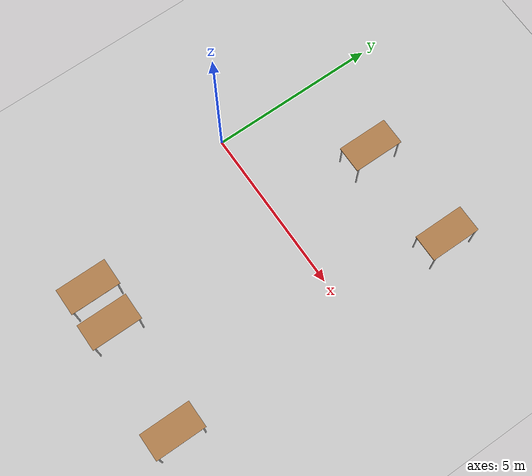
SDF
<sdf version="1.6">
 <world name="default">
  <model name="ground_plane">
   <static>1</static>
   <link name="link">
    <collision name="collision">
     <geometry><plane><normal>0 0 1</normal><size>100 100</size></plane></geometry>
     <surface>
      <contact><collide_bitmask>65535</collide_bitmask></contact>
      <friction><ode><mu>100</mu><mu2>50</mu2></ode></friction>
     </surface>
    </collision>
    <visual name="visual">
     <cast_shadows>0</cast_shadows>
     <geometry><plane><normal>0 0 1</normal><size>100 100</size></plane></geometry>
     <material>
      <script><uri>file://media/materials/scripts/gazebo.material</uri><name>Gazebo/Grey</name></script>
     </material>
    </visual>
   </link>
  </model>
  <model name="table_clone">
   <static>1</static>
   <link name="link">
    <collision name="surface">
     <pose>0 0 1 0 -0 0</pose>
     <geometry><box><size>1.5 0.8 0.03</size></box></geometry>
     <surface><friction><ode><mu>0.6</mu><mu2>0.6</mu2></ode></friction></surface>
    </collision>
    <visual name="visual1">
     <pose>0 0 1 0 -0 0</pose>
     <geometry><box><size>1.5 0.8 0.03</size></box></geometry>
     <material>
      <script><uri>file://media/materials/scripts/gazebo.material</uri><name>Gazebo/Wood</name></script>
     </material>
    </visual>
    <collision name="front_left_leg">
     <pose>0.68 0.38 0.5 0 -0 0</pose>
     <geometry><cylinder><radius>0.02</radius><length>1</length></cylinder></geometry>
    </collision>
    <visual name="front_left_leg">
     <pose>0.68 0.38 0.5 0 -0 0</pose>
     <geometry><cylinder><radius>0.02</radius><length>1</length></cylinder></geometry>
     <material>
      <script><uri>file://media/materials/scripts/gazebo.material</uri><name>Gazebo/Grey</name></script>
     </material>
    </visual>
    <collision name="front_right_leg">
     <pose>0.68 -0.38 0.5 0 -0 0</pose>
     <geometry><cylinder><radius>0.02</radius><length>1</length></cylinder></geometry>
    </collision>
    <visual name="front_right_leg">
     <pose>0.68 -0.38 0.5 0 -0 0</pose>
     <geometry><cylinder><radius>0.02</radius><length>1</length></cylinder></geometry>
     <material>
      <script><uri>file://media/materials/scripts/gazebo.material</uri><name>Gazebo/Grey</name></script>
     </material>
    </visual>
    <collision name="back_right_leg">
     <pose>-0.68 -0.38 0.5 0 -0 0</pose>
     <geometry><cylinder><radius>0.02</radius><length>1</length></cylinder></geometry>
    </collision>
    <visual name="back_right_leg">
     <pose>-0.68 -0.38 0.5 0 -0 0</pose>
     <geometry><cylinder><radius>0.02</radius><length>1</length></cylinder></geometry>
     <material>
      <script><uri>file://media/materials/scripts/gazebo.material</uri><name>Gazebo/Grey</name></script>
     </material>
    </visual>
    <collision name="back_left_leg">
     <pose>-0.68 0.38 0.5 0 -0 0</pose>
     <geometry><cylinder><radius>0.02</radius><length>1</length></cylinder></geometry>
    </collision>
    <visual name="back_left_leg">
     <pose>-0.68 0.38 0.5 0 -0 0</pose>
     <geometry><cylinder><radius>0.02</radius><length>1</length></cylinder></geometry>
     <material>
      <script><uri>file://media/materials/scripts/gazebo.material</uri><name>Gazebo/Grey</name></script>
     </material>
    </visual>
   </link>
   <pose>1.73466 -5.37641 0 0 0 -1.57312</pose>
  </model>
  <model name="table_clone_0">
   <static>1</static>
   <link name="link">
    <collision name="surface">
     <pose>0 0 1 0 -0 0</pose>
     <geometry><box><size>1.5 0.8 0.03</size></box></geometry>
     <surface><friction><ode><mu>0.6</mu><mu2>0.6</mu2></ode></friction></surface>
    </collision>
    <visual name="visual1">
     <pose>0 0 1 0 -0 0</pose>
     <geometry><box><size>1.5 0.8 0.03</size></box></geometry>
     <material>
      <script><uri>file://media/materials/scripts/gazebo.material</uri><name>Gazebo/Wood</name></script>
     </material>
    </visual>
    <collision name="front_left_leg">
     <pose>0.68 0.38 0.5 0 -0 0</pose>
     <geometry><cylinder><radius>0.02</radius><length>1</length></cylinder></geometry>
    </collision>
    <visual name="front_left_leg">
     <pose>0.68 0.38 0.5 0 -0 0</pose>
     <geometry><cylinder><radius>0.02</radius><length>1</length></cylinder></geometry>
     <material>
      <script><uri>file://media/materials/scripts/gazebo.material</uri><name>Gazebo/Grey</name></script>
     </material>
    </visual>
    <collision name="front_right_leg">
     <pose>0.68 -0.38 0.5 0 -0 0</pose>
     <geometry><cylinder><radius>0.02</radius><length>1</length></cylinder></geometry>
    </collision>
    <visual name="front_right_leg">
     <pose>0.68 -0.38 0.5 0 -0 0</pose>
     <geometry><cylinder><radius>0.02</radius><length>1</length></cylinder></geometry>
     <material>
      <script><uri>file://media/materials/scripts/gazebo.material</uri><name>Gazebo/Grey</name></script>
     </material>
    </visual>
    <collision name="back_right_leg">
     <pose>-0.68 -0.38 0.5 0 -0 0</pose>
     <geometry><cylinder><radius>0.02</radius><length>1</length></cylinder></geometry>
    </collision>
    <visual name="back_right_leg">
     <pose>-0.68 -0.38 0.5 0 -0 0</pose>
     <geometry><cylinder><radius>0.02</radius><length>1</length></cylinder></geometry>
     <material>
      <script><uri>file://media/materials/scripts/gazebo.material</uri><name>Gazebo/Grey</name></script>
     </material>
    </visual>
    <collision name="back_left_leg">
     <pose>-0.68 0.38 0.5 0 -0 0</pose>
     <geometry><cylinder><radius>0.02</radius><length>1</length></cylinder></geometry>
    </collision>
    <visual name="back_left_leg">
     <pose>-0.68 0.38 0.5 0 -0 0</pose>
     <geometry><cylinder><radius>0.02</radius><length>1</length></cylinder></geometry>
     <material>
      <script><uri>file://media/materials/scripts/gazebo.material</uri><name>Gazebo/Grey</name></script>
     </material>
    </visual>
   </link>
   <pose>2.85507 -5.42184 0 0 0 -1.57312</pose>
  </model>
  <model name="table_clone_1">
   <static>1</static>
   <link name="link">
    <collision name="surface">
     <pose>0 0 1 0 -0 0</pose>
     <geometry><box><size>1.5 0.8 0.03</size></box></geometry>
     <surface><friction><ode><mu>0.6</mu><mu2>0.6</mu2></ode></friction></surface>
    </collision>
    <visual name="visual1">
     <pose>0 0 1 0 -0 0</pose>
     <geometry><box><size>1.5 0.8 0.03</size></box></geometry>
     <material>
      <script><uri>file://media/materials/scripts/gazebo.material</uri><name>Gazebo/Wood</name></script>
     </material>
    </visual>
    <collision name="front_left_leg">
     <pose>0.68 0.38 0.5 0 -0 0</pose>
     <geometry><cylinder><radius>0.02</radius><length>1</length></cylinder></geometry>
    </collision>
    <visual name="front_left_leg">
     <pose>0.68 0.38 0.5 0 -0 0</pose>
     <geometry><cylinder><radius>0.02</radius><length>1</length></cylinder></geometry>
     <material>
      <script><uri>file://media/materials/scripts/gazebo.material</uri><name>Gazebo/Grey</name></script>
     </material>
    </visual>
    <collision name="front_right_leg">
     <pose>0.68 -0.38 0.5 0 -0 0</pose>
     <geometry><cylinder><radius>0.02</radius><length>1</length></cylinder></geometry>
    </collision>
    <visual name="front_right_leg">
     <pose>0.68 -0.38 0.5 0 -0 0</pose>
     <geometry><cylinder><radius>0.02</radius><length>1</length></cylinder></geometry>
     <material>
      <script><uri>file://media/materials/scripts/gazebo.material</uri><name>Gazebo/Grey</name></script>
     </material>
    </visual>
    <collision name="back_right_leg">
     <pose>-0.68 -0.38 0.5 0 -0 0</pose>
     <geometry><cylinder><radius>0.02</radius><length>1</length></cylinder></geometry>
    </collision>
    <visual name="back_right_leg">
     <pose>-0.68 -0.38 0.5 0 -0 0</pose>
     <geometry><cylinder><radius>0.02</radius><length>1</length></cylinder></geometry>
     <material>
      <script><uri>file://media/materials/scripts/gazebo.material</uri><name>Gazebo/Grey</name></script>
     </material>
    </visual>
    <collision name="back_left_leg">
     <pose>-0.68 0.38 0.5 0 -0 0</pose>
     <geometry><cylinder><radius>0.02</radius><length>1</length></cylinder></geometry>
    </collision>
    <visual name="back_left_leg">
     <pose>-0.68 0.38 0.5 0 -0 0</pose>
     <geometry><cylinder><radius>0.02</radius><length>1</length></cylinder></geometry>
     <material>
      <script><uri>file://media/materials/scripts/gazebo.material</uri><name>Gazebo/Grey</name></script>
     </material>
    </visual>
   </link>
   <pose>2.77709 3.11382 0 0 0 -1.57312</pose>
  </model>
  <model name="table_clone_4">
   <static>1</static>
   <link name="link">
    <collision name="surface">
     <pose>0 0 1 0 -0 0</pose>
     <geometry><box><size>1.5 0.8 0.03</size></box></geometry>
     <surface><friction><ode><mu>0.6</mu><mu2>0.6</mu2></ode></friction></surface>
    </collision>
    <visual name="visual1">
     <pose>0 0 1 0 -0 0</pose>
     <geometry><box><size>1.5 0.8 0.03</size></box></geometry>
     <material>
      <script><uri>file://media/materials/scripts/gazebo.material</uri><name>Gazebo/Wood</name></script>
     </material>
    </visual>
    <collision name="front_left_leg">
     <pose>0.68 0.38 0.5 0 -0 0</pose>
     <geometry><cylinder><radius>0.02</radius><length>1</length></cylinder></geometry>
    </collision>
    <visual name="front_left_leg">
     <pose>0.68 0.38 0.5 0 -0 0</pose>
     <geometry><cylinder><radius>0.02</radius><length>1</length></cylinder></geometry>
     <material>
      <script><uri>file://media/materials/scripts/gazebo.material</uri><name>Gazebo/Grey</name></script>
     </material>
    </visual>
    <collision name="front_right_leg">
     <pose>0.68 -0.38 0.5 0 -0 0</pose>
     <geometry><cylinder><radius>0.02</radius><length>1</length></cylinder></geometry>
    </collision>
    <visual name="front_right_leg">
     <pose>0.68 -0.38 0.5 0 -0 0</pose>
     <geometry><cylinder><radius>0.02</radius><length>1</length></cylinder></geometry>
     <material>
      <script><uri>file://media/materials/scripts/gazebo.material</uri><name>Gazebo/Grey</name></script>
     </material>
    </visual>
    <collision name="back_right_leg">
     <pose>-0.68 -0.38 0.5 0 -0 0</pose>
     <geometry><cylinder><radius>0.02</radius><length>1</length></cylinder></geometry>
    </collision>
    <visual name="back_right_leg">
     <pose>-0.68 -0.38 0.5 0 -0 0</pose>
     <geometry><cylinder><radius>0.02</radius><length>1</length></cylinder></geometry>
     <material>
      <script><uri>file://media/materials/scripts/gazebo.material</uri><name>Gazebo/Grey</name></script>
     </material>
    </visual>
    <collision name="back_left_leg">
     <pose>-0.68 0.38 0.5 0 -0 0</pose>
     <geometry><cylinder><radius>0.02</radius><length>1</length></cylinder></geometry>
    </collision>
    <visual name="back_left_leg">
     <pose>-0.68 0.38 0.5 0 -0 0</pose>
     <geometry><cylinder><radius>0.02</radius><length>1</length></cylinder></geometry>
     <material>
      <script><uri>file://media/materials/scripts/gazebo.material</uri><name>Gazebo/Grey</name></script>
     </material>
    </visual>
   </link>
   <pose>5.98352 3.27326 0 0 0 -1.57312</pose>
  </model>
  <model name="table_clone_5">
   <static>1</static>
   <link name="link">
    <collision name="surface">
     <pose>0 0 1 0 -0 0</pose>
     <geometry><box><size>1.5 0.8 0.03</size></box></geometry>
     <surface><friction><ode><mu>0.6</mu><mu2>0.6</mu2></ode></friction></surface>
    </collision>
    <visual name="visual1">
     <pose>0 0 1 0 -0 0</pose>
     <geometry><box><size>1.5 0.8 0.03</size></box></geometry>
     <material>
      <script><uri>file://media/materials/scripts/gazebo.material</uri><name>Gazebo/Wood</name></script>
     </material>
    </visual>
    <collision name="front_left_leg">
     <pose>0.68 0.38 0.5 0 -0 0</pose>
     <geometry><cylinder><radius>0.02</radius><length>1</length></cylinder></geometry>
    </collision>
    <visual name="front_left_leg">
     <pose>0.68 0.38 0.5 0 -0 0</pose>
     <geometry><cylinder><radius>0.02</radius><length>1</length></cylinder></geometry>
     <material>
      <script><uri>file://media/materials/scripts/gazebo.material</uri><name>Gazebo/Grey</name></script>
     </material>
    </visual>
    <collision name="front_right_leg">
     <pose>0.68 -0.38 0.5 0 -0 0</pose>
     <geometry><cylinder><radius>0.02</radius><length>1</length></cylinder></geometry>
    </collision>
    <visual name="front_right_leg">
     <pose>0.68 -0.38 0.5 0 -0 0</pose>
     <geometry><cylinder><radius>0.02</radius><length>1</length></cylinder></geometry>
     <material>
      <script><uri>file://media/materials/scripts/gazebo.material</uri><name>Gazebo/Grey</name></script>
     </material>
    </visual>
    <collision name="back_right_leg">
     <pose>-0.68 -0.38 0.5 0 -0 0</pose>
     <geometry><cylinder><radius>0.02</radius><length>1</length></cylinder></geometry>
    </collision>
    <visual name="back_right_leg">
     <pose>-0.68 -0.38 0.5 0 -0 0</pose>
     <geometry><cylinder><radius>0.02</radius><length>1</length></cylinder></geometry>
     <material>
      <script><uri>file://media/materials/scripts/gazebo.material</uri><name>Gazebo/Grey</name></script>
     </material>
    </visual>
    <collision name="back_left_leg">
     <pose>-0.68 0.38 0.5 0 -0 0</pose>
     <geometry><cylinder><radius>0.02</radius><length>1</length></cylinder></geometry>
    </collision>
    <visual name="back_left_leg">
     <pose>-0.68 0.38 0.5 0 -0 0</pose>
     <geometry><cylinder><radius>0.02</radius><length>1</length></cylinder></geometry>
     <material>
      <script><uri>file://media/materials/scripts/gazebo.material</uri><name>Gazebo/Grey</name></script>
     </material>
    </visual>
   </link>
   <pose>6.13806 -5.60722 0 0 0 -1.57312</pose>
  </model>
 </world>
</sdf>
